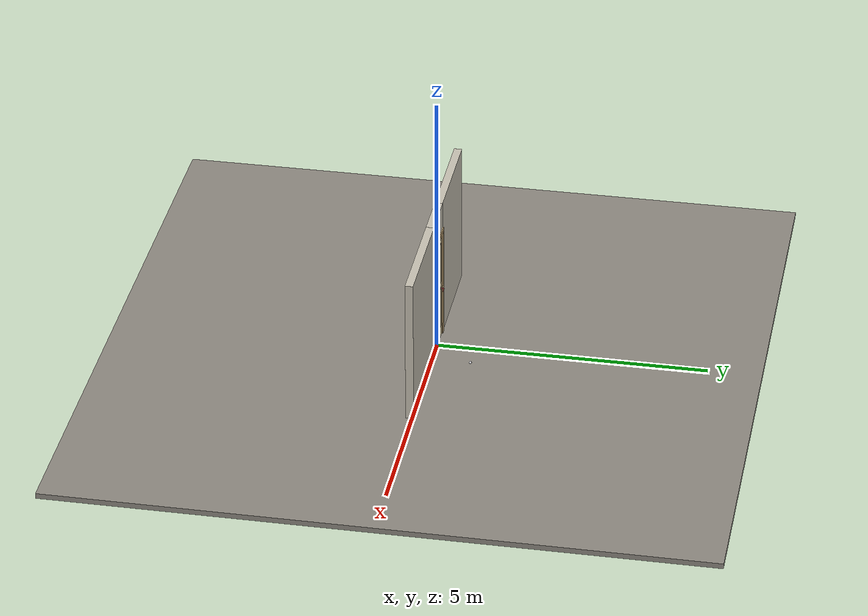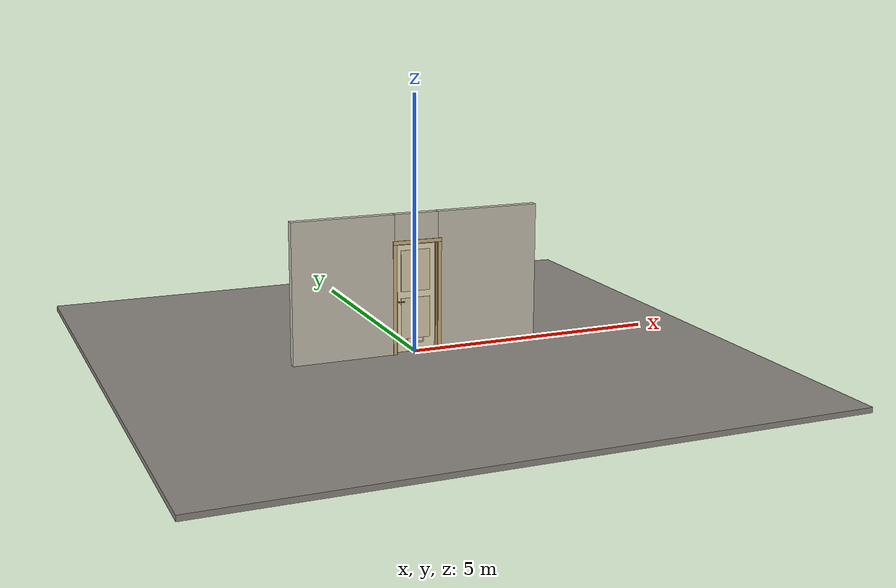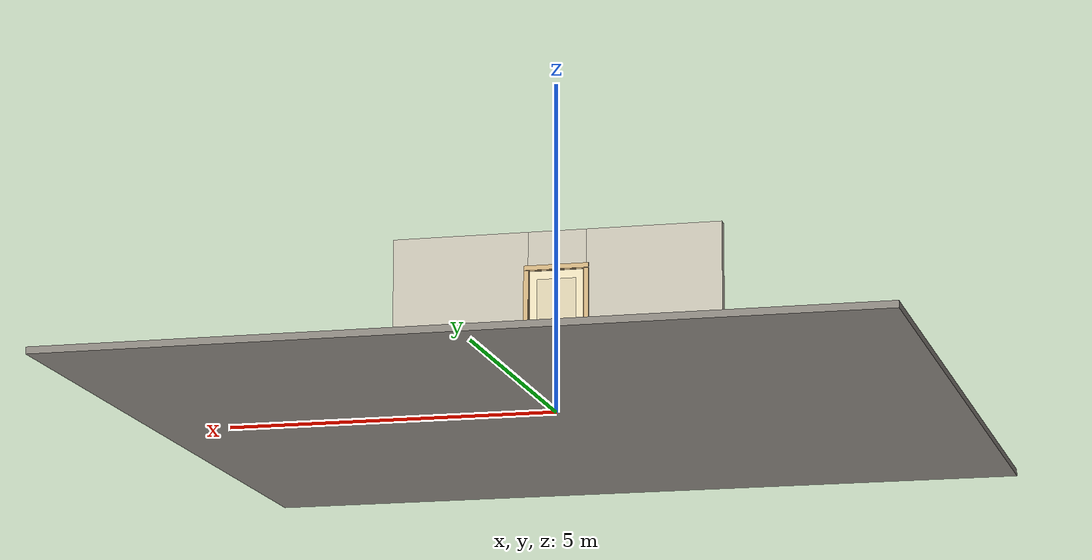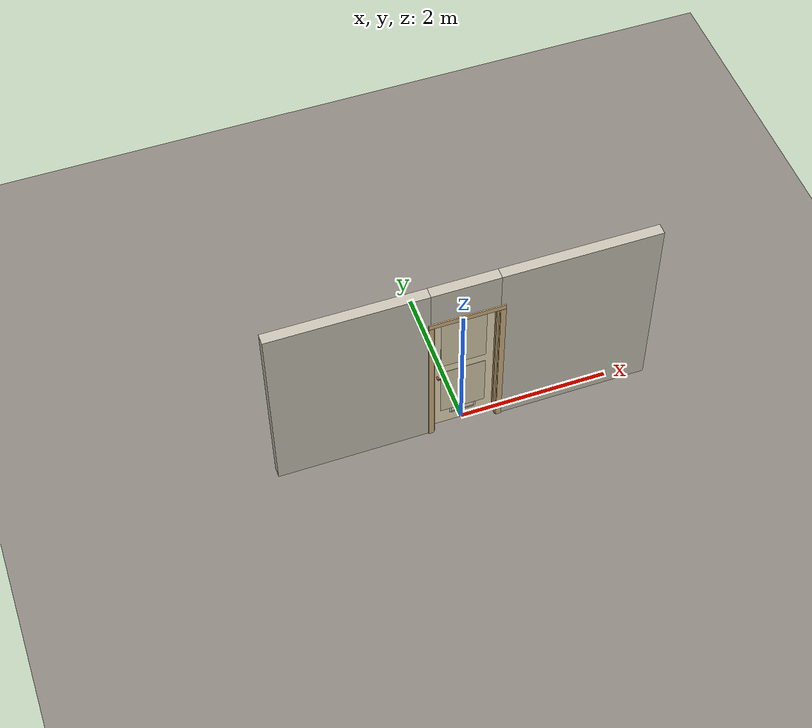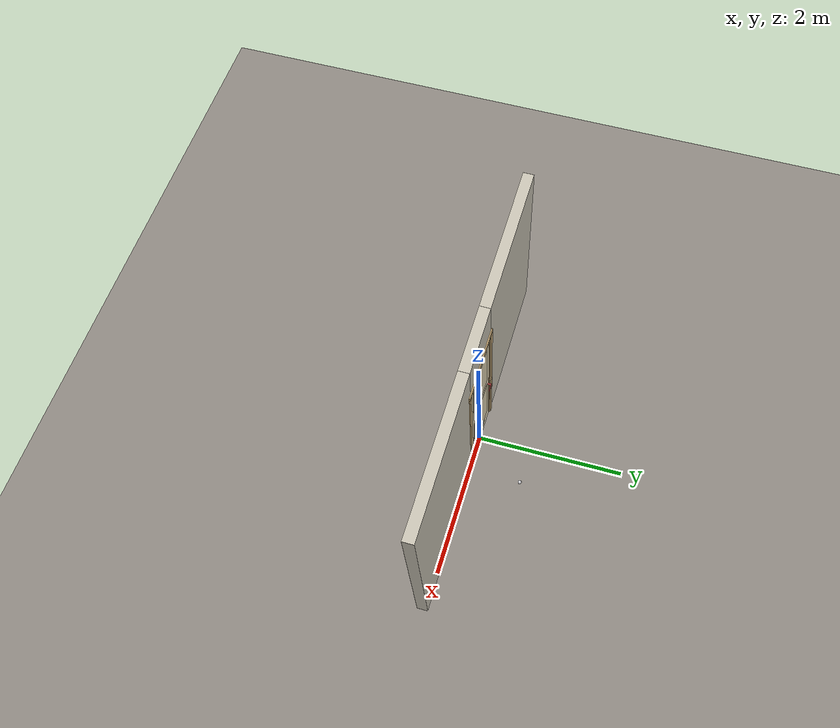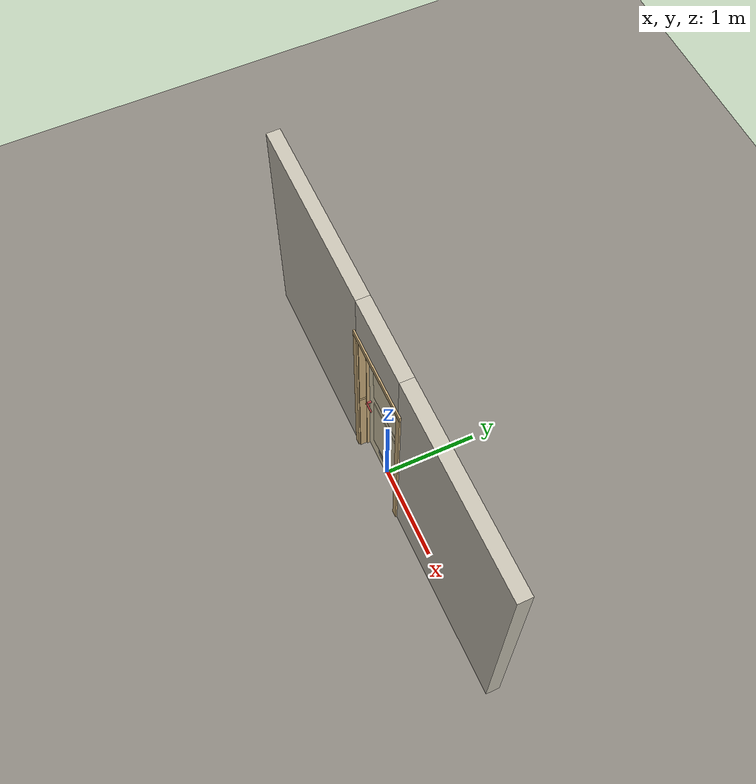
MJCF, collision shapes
<?xml version="1.0" ?>
<mujoco model="db0936_swing_single_full">
  <compiler angle="radian" meshdir="../../hardware" texturedir="../../textures" autolimits="true" inertiafromgeom="false"/>
  <option timestep="0.002" integrator="implicitfast" cone="elliptic" impratio="10" noslip_iterations="3">
    <flag multiccd="enable"/>
  </option>
  <size memory="16M"/>
  <default>
    <geom condim="4" solref="0.005 1" solimp="0.95 0.99 0.001"/>
    <joint solreflimit="0.005 1" solimplimit="0.95 0.99 0.001"/>
    <tendon solreflimit="0.005 1"/>
    <equality solref="0.002 1"/>
  </default>
  <visual>
    <headlight ambient="0.4 0.4 0.4" diffuse="0.7 0.7 0.7" specular="0.2 0.2 0.2"/>
    <quality shadowsize="4096"/>
    <map znear="0.01" zfar="60"/>
  </visual>
  <asset>
    <mesh name="hinge_96510cf394" file="hinge_96510cf394.obj"/>
    <mesh name="hinge_jamb_7fd4ca52b2" file="hinge_jamb_7fd4ca52b2.obj"/>
    <mesh name="lever_748f08efca" file="lever_748f08efca.obj"/>
    <material name="mat_floor" rgba="0.55 0.53 0.5 1" specular="0.2" shininess="0.15" reflectance="0"/>
    <material name="mat_wall" rgba="0.78 0.76 0.7 1" specular="0.2" shininess="0.1" reflectance="0"/>
    <material name="mat_leaf" rgba="0.93 0.88 0.74 1" specular="0.2" shininess="0.55" reflectance="0"/>
    <material name="mat_leaf_panel" rgba="0.856 0.81 0.681 1" specular="0.2" shininess="0.55" reflectance="0"/>
    <material name="mat_hinge" rgba="0.65 0.66 0.68 1" specular="0.74" shininess="0.5" reflectance="0.36"/>
    <material name="mat_op_chrome" rgba="0.9 0.9 0.92 1" specular="0.8" shininess="0.9" reflectance="0.4"/>
    <material name="mat_trim" rgba="0.85 0.66 0.3 1" specular="0.8" shininess="0.75" reflectance="0.4"/>
    <material name="mat_bolt" rgba="0.85 0.66 0.3 1" specular="0.8" shininess="0.75" reflectance="0.4"/>
    <material name="mat_frame" rgba="0.82 0.7 0.5 1" specular="0.2" shininess="0.45" reflectance="0"/>
    <material name="mat_vent" rgba="0.8 0.81 0.83 1" specular="0.8" shininess="0.6" reflectance="0.4"/>
    <material name="mat_stop" rgba="0.9 0.9 0.92 1" specular="0.8" shininess="0.9" reflectance="0.4"/>
    <texture name="skybox" type="skybox" builtin="gradient" rgb1="0.6 0.7 0.85" rgb2="0.9 0.92 0.95" width="256" height="256"/>
  </asset>
  <worldbody>
    <light name="sun" pos="1.5 -2.5 4" dir="-0.3 0.5 -0.8" directional="true" diffuse="0.8 0.8 0.8" specular="0.3 0.3 0.3" castshadow="true"/>
    <light name="fill" pos="-1.5 2.5 3" dir="0.3 -0.5 -0.7" directional="true" diffuse="0.35 0.35 0.4" castshadow="false"/>
    <camera name="robot_view" pos="0 -2.685812 1.812087" xyaxes="1 0 0 0 0.26963 0.962964" fovy="52"/>
    <camera name="far_view" pos="0 2.589812 1.812087" xyaxes="-1 0 0 0 -0.26963 0.962964" fovy="52"/>
    <camera name="iso" pos="-2.004737 -2.263762 2.234138" xyaxes="0.741536 -0.670913 0 0.242917 0.268487 0.932151" fovy="46"/>
    <camera name="detail_handle" pos="-0.0764 -0.8725 1.296" xyaxes="0.97561 0.219512 0 -0.070934 0.315262 0.94635" fovy="38"/>
    <geom name="floor" type="box" size="6 6 0.05" pos="0 0 -0.05" material="mat_floor" group="0" contype="1" conaffinity="1" friction="0.8 0.005 0.0001" density="2400"/>
    <geom name="wall_left" type="box" size="1.0205 0.0725 1.3735" pos="-1.4795 -0.048 1.3735" material="mat_wall" group="0" contype="1" conaffinity="1" friction="0.6 0.005 0.0001" density="800"/>
    <geom name="wall_right" type="box" size="1.0355 0.0725 1.3735" pos="1.4645 -0.048 1.3735" material="mat_wall" group="0" contype="1" conaffinity="1" friction="0.6 0.005 0.0001" density="800"/>
    <geom name="wall_header" type="box" size="0.444 0.0725 0.2755" pos="-0.015 -0.048 2.4715" material="mat_wall" group="0" contype="1" conaffinity="1" friction="0.6 0.005 0.0001" density="800"/>
    <geom name="hinge_0_jamb" type="mesh" mesh="hinge_jamb_7fd4ca52b2" pos="0.407 0.0245 0.259" quat="0 0 0 1" material="mat_hinge" group="1" contype="0" conaffinity="0" density="7850"/>
    <geom name="hinge_1_jamb" type="mesh" mesh="hinge_jamb_7fd4ca52b2" pos="0.407 0.0245 1.076" quat="0 0 0 1" material="mat_hinge" group="1" contype="0" conaffinity="0" density="7850"/>
    <geom name="hinge_2_jamb" type="mesh" mesh="hinge_jamb_7fd4ca52b2" pos="0.407 0.0245 1.963" quat="0 0 0 1" material="mat_hinge" group="1" contype="0" conaffinity="0" density="7850"/>
    <geom name="jamb_hinge" type="box" size="0.0095 0.0725 1.0735" pos="0.4195 -0.048 1.0735" material="mat_frame" group="0" contype="1" conaffinity="1" friction="0.6 0.005 0.0001" density="400"/>
    <geom name="strike_1016_wall_n" type="box" size="0.0245 0.056325 0.0167" pos="-0.4345 -0.064175 1.016" material="mat_frame" group="0" contype="1" conaffinity="1" friction="0.6 0.005 0.0001" density="400"/>
    <geom name="strike_1016_wall_p" type="box" size="0.0245 0.008 0.0167" pos="-0.4345 0.01585 1.016" material="mat_frame" group="0" contype="1" conaffinity="1" friction="0.6 0.005 0.0001" density="400"/>
    <geom name="strike_1016_ramp" type="box" size="0.0245 0.01649 0.0167" pos="-0.439136 0.028673 1.016" quat="0.977148 0 0 0.212558" material="mat_frame" group="0" contype="1" conaffinity="1" friction="0.12 0.005 0.0001" density="400"/>
    <geom name="strike_1016_back" type="box" size="0.01615 0.00785 0.0167" pos="-0.44285 0 1.016" material="mat_frame" group="0" contype="1" conaffinity="1" friction="0.6 0.005 0.0001" density="400"/>
    <geom name="jamb_strike_0" type="box" size="0.0245 0.0725 0.49965" pos="-0.4345 -0.048 0.49965" material="mat_frame" group="0" contype="1" conaffinity="1" friction="0.6 0.005 0.0001" density="400"/>
    <geom name="jamb_strike_1" type="box" size="0.0245 0.0725 0.55715" pos="-0.4345 -0.048 1.58985" material="mat_frame" group="0" contype="1" conaffinity="1" friction="0.6 0.005 0.0001" density="400"/>
    <geom name="jamb_head" type="box" size="0.444 0.0725 0.0095" pos="-0.015 -0.048 2.1565" material="mat_frame" group="0" contype="1" conaffinity="1" friction="0.6 0.005 0.0001" density="400"/>
    <geom name="head_stud" type="box" size="0.444 0.0725 0.015" pos="-0.015 -0.048 2.181" material="mat_wall" group="0" contype="1" conaffinity="1" friction="0.6 0.005 0.0001" density="500"/>
    <geom name="stop_hinge" type="box" size="0.0055 0.016 1.0735" pos="0.4045 -0.034 1.0735" material="mat_frame" group="0" contype="1" conaffinity="1" friction="0.6 0.005 0.0001" density="400"/>
    <geom name="stop_strike" type="box" size="0.0055 0.016 1.0735" pos="-0.4045 -0.034 1.0735" material="mat_frame" group="0" contype="1" conaffinity="1" friction="0.6 0.005 0.0001" density="400"/>
    <geom name="stop_head" type="box" size="0.41 0.016 0.0055" pos="0 -0.034 2.1415" material="mat_frame" group="0" contype="1" conaffinity="1" friction="0.6 0.005 0.0001" density="400"/>
    <geom name="casing_l_n" type="box" size="0.035 0.008 1.083" pos="-0.459 -0.1285 1.0735" material="mat_frame" group="2" contype="0" conaffinity="0" density="400"/>
    <geom name="casing_r_n" type="box" size="0.035 0.008 1.083" pos="0.459 -0.1285 1.0735" material="mat_frame" group="2" contype="0" conaffinity="0" density="400"/>
    <geom name="casing_h_n" type="box" size="0.494 0.008 0.035" pos="0 -0.1285 2.196" material="mat_frame" group="2" contype="0" conaffinity="0" density="400"/>
    <geom name="casing_l_p" type="box" size="0.035 0.008 1.083" pos="-0.459 0.0325 1.0735" material="mat_frame" group="2" contype="0" conaffinity="0" density="400"/>
    <geom name="casing_r_p" type="box" size="0.035 0.008 1.083" pos="0.459 0.0325 1.0735" material="mat_frame" group="2" contype="0" conaffinity="0" density="400"/>
    <geom name="casing_h_p" type="box" size="0.494 0.008 0.035" pos="0 0.0325 2.196" material="mat_frame" group="2" contype="0" conaffinity="0" density="400"/>
    <geom name="floor_stop_dome" type="sphere" size="0.025" pos="0.487153 0.711177 0" material="mat_stop" group="0" contype="1" conaffinity="1" friction="0.6 0.005 0.0001" density="7000"/>
    <site name="approach_point" pos="0 -1.5 0" quat="1 0 0 0" size="0.05" rgba="0.2 0.9 0.2 0.5" group="4"/>
    <site name="goal_point" pos="0 1.5 0" quat="1 0 0 0" size="0.05" rgba="0.2 0.9 0.2 0.5" group="4"/>
    <site name="door_plane_center" pos="0 0 1.0735" quat="1 0 0 0" size="0.02" rgba="0.2 0.9 0.2 0.5" group="4"/>
    <body name="leaf" pos="0.41 0 0">
      <inertial pos="-0.399339 0.000378 1.027127" mass="15.886849" quat="0.501227 -0.499899 -0.500134 -0.498737" diaginertia="0.878067042 6.247471132 7.121818683"/>
      <joint name="leaf_hinge" type="hinge" axis="0 0 -1" pos="-0.003 0.0245 0" limited="true" range="0 1.658063" damping="0.218374" frictionloss="3.391442" armature="0.02"/>
      <geom name="leaf_slab" type="box" size="0.4065 0.0175 1.067" pos="-0.4095 0 1.076" material="mat_leaf" group="0" contype="1" conaffinity="1" friction="0.35 0.005 0.0001" density="1"/>
      <geom name="leaf_panel_0_n" type="box" size="0.2965 0.003 0.40564" pos="-0.4095 -0.0205 0.66938" material="mat_leaf_panel" group="1" contype="0" conaffinity="0" density="1"/>
      <geom name="leaf_panel_0_p" type="box" size="0.2965 0.003 0.40564" pos="-0.4095 0.0205 0.66938" material="mat_leaf_panel" group="1" contype="0" conaffinity="0" density="1"/>
      <geom name="leaf_panel_1_n" type="box" size="0.2965 0.003 0.40564" pos="-0.4095 -0.0205 1.61066" material="mat_leaf_panel" group="1" contype="0" conaffinity="0" density="1"/>
      <geom name="leaf_panel_1_p" type="box" size="0.2965 0.003 0.40564" pos="-0.4095 0.0205 1.61066" material="mat_leaf_panel" group="1" contype="0" conaffinity="0" density="1"/>
      <geom name="hinge_0" type="mesh" mesh="hinge_96510cf394" pos="-0.003 0.0245 0.259" quat="0 0 0 1" material="mat_hinge" group="1" contype="0" conaffinity="0" density="7850"/>
      <geom name="hinge_1" type="mesh" mesh="hinge_96510cf394" pos="-0.003 0.0245 1.076" quat="0 0 0 1" material="mat_hinge" group="1" contype="0" conaffinity="0" density="7850"/>
      <geom name="hinge_2" type="mesh" mesh="hinge_96510cf394" pos="-0.003 0.0245 1.963" quat="0 0 0 1" material="mat_hinge" group="1" contype="0" conaffinity="0" density="7850"/>
      <geom name="leaf_latch_bolt_faceplate" type="box" size="0.0006 0.01235 0.0267" pos="-0.8154 0 1.016" material="mat_bolt" group="1" contype="0" conaffinity="0" density="8500"/>
      <geom name="louver_vent_stile_n_l" type="box" size="0.012 0.002 0.137" pos="-0.5715 -0.0195 0.314" material="mat_vent" group="2" contype="0" conaffinity="0" density="2700"/>
      <geom name="louver_vent_stile_n_r" type="box" size="0.012 0.002 0.137" pos="-0.2475 -0.0195 0.314" material="mat_vent" group="2" contype="0" conaffinity="0" density="2700"/>
      <geom name="louver_vent_rail_n_b" type="box" size="0.15 0.002 0.012" pos="-0.4095 -0.0195 0.177" material="mat_vent" group="2" contype="0" conaffinity="0" density="2700"/>
      <geom name="louver_vent_rail_n_t" type="box" size="0.15 0.002 0.012" pos="-0.4095 -0.0195 0.451" material="mat_vent" group="2" contype="0" conaffinity="0" density="2700"/>
      <geom name="louver_vent_stile_p_l" type="box" size="0.012 0.002 0.137" pos="-0.5715 0.0195 0.314" material="mat_vent" group="2" contype="0" conaffinity="0" density="2700"/>
      <geom name="louver_vent_stile_p_r" type="box" size="0.012 0.002 0.137" pos="-0.2475 0.0195 0.314" material="mat_vent" group="2" contype="0" conaffinity="0" density="2700"/>
      <geom name="louver_vent_rail_p_b" type="box" size="0.15 0.002 0.012" pos="-0.4095 0.0195 0.177" material="mat_vent" group="2" contype="0" conaffinity="0" density="2700"/>
      <geom name="louver_vent_rail_p_t" type="box" size="0.15 0.002 0.012" pos="-0.4095 0.0195 0.451" material="mat_vent" group="2" contype="0" conaffinity="0" density="2700"/>
      <geom name="louver_vent_slat_0" type="box" size="0.15 0.0015 0.015" pos="-0.4095 0 0.209833" quat="0.965926 -0.258819 0 0" material="mat_vent" group="2" contype="0" conaffinity="0" density="2700"/>
      <geom name="louver_vent_slat_1" type="box" size="0.15 0.0015 0.015" pos="-0.4095 0 0.2515" quat="0.965926 -0.258819 0 0" material="mat_vent" group="2" contype="0" conaffinity="0" density="2700"/>
      <geom name="louver_vent_slat_2" type="box" size="0.15 0.0015 0.015" pos="-0.4095 0 0.293167" quat="0.965926 -0.258819 0 0" material="mat_vent" group="2" contype="0" conaffinity="0" density="2700"/>
      <geom name="louver_vent_slat_3" type="box" size="0.15 0.0015 0.015" pos="-0.4095 0 0.334833" quat="0.965926 -0.258819 0 0" material="mat_vent" group="2" contype="0" conaffinity="0" density="2700"/>
      <geom name="louver_vent_slat_4" type="box" size="0.15 0.0015 0.015" pos="-0.4095 0 0.3765" quat="0.965926 -0.258819 0 0" material="mat_vent" group="2" contype="0" conaffinity="0" density="2700"/>
      <geom name="louver_vent_slat_5" type="box" size="0.15 0.0015 0.015" pos="-0.4095 0 0.418167" quat="0.965926 -0.258819 0 0" material="mat_vent" group="2" contype="0" conaffinity="0" density="2700"/>
      <site name="leaf_edge_mid" pos="-0.816 0 1.067" quat="1 0 0 0" size="0.02" rgba="0.2 0.9 0.2 0.5" group="4"/>
      <body name="leaf_handle" pos="-0.756 0 1.016">
        <inertial pos="0.024186 -0.000772 0" mass="0.847837" quat="0.70377 0 0 -0.710427" diaginertia="0.001187205 0.002868554 0.003918928"/>
        <joint name="leaf_handle_hinge" type="hinge" axis="0 1 0" limited="true" range="0 0.87" damping="0.205085" frictionloss="0.04" stiffness="0.9" springref="-0.444444" armature="0.01"/>
        <geom name="leaf_handle_spindle" type="cylinder" size="0.006 0.0255" pos="0 0 0" quat="0.707107 -0.707107 0 0" material="mat_op_chrome" group="1" contype="0" conaffinity="0" density="7850"/>
        <geom name="leaf_handle_lever_n" type="mesh" mesh="lever_748f08efca" pos="0 -0.0175 0" quat="0 0 -0.707107 0.707107" material="mat_op_chrome" group="1" contype="0" conaffinity="0" density="3000"/>
        <geom name="leaf_handle_lever_col_n" type="capsule" size="0.008 0.048" pos="0.056 -0.0725 0" quat="0.707107 0 0.707107 0" material="mat_op_chrome" group="3" contype="1" conaffinity="1" rgba="0.8 0.3 0.3 0.25" friction="0.7 0.01 0.0001" density="3000"/>
        <geom name="leaf_handle_hub_col_n" type="cylinder" size="0.012 0.022" pos="0 -0.0475 0" quat="0.707107 -0.707107 0 0" material="mat_op_chrome" group="3" contype="1" conaffinity="1" rgba="0.8 0.3 0.3 0.25" friction="0.6 0.005 0.0001" density="3000"/>
        <geom name="leaf_handle_turn_button_n" type="cylinder" size="0.006 0.005" pos="0 -0.0815 0" quat="0.707107 -0.707107 0 0" material="mat_trim" group="1" contype="0" conaffinity="0" density="7100"/>
        <geom name="leaf_handle_lever_p" type="mesh" mesh="lever_748f08efca" pos="0 0.0175 0" quat="0 0 0.707107 0.707107" material="mat_op_chrome" group="1" contype="0" conaffinity="0" density="3000"/>
        <geom name="leaf_handle_lever_col_p" type="capsule" size="0.008 0.048" pos="0.056 0.0725 0" quat="0.707107 0 0.707107 0" material="mat_op_chrome" group="3" contype="1" conaffinity="1" rgba="0.8 0.3 0.3 0.25" friction="0.7 0.01 0.0001" density="3000"/>
        <geom name="leaf_handle_hub_col_p" type="cylinder" size="0.012 0.022" pos="0 0.0475 0" quat="0.707107 -0.707107 0 0" material="mat_op_chrome" group="3" contype="1" conaffinity="1" rgba="0.8 0.3 0.3 0.25" friction="0.6 0.005 0.0001" density="3000"/>
        <site name="leaf_handle_grip_n" pos="0.0896 -0.0725 0" quat="1 0 0 0" size="0.012" rgba="0.2 0.9 0.2 0.5" group="4"/>
        <site name="leaf_handle_grip_p" pos="0.0896 0.0725 0" quat="1 0 0 0" size="0.012" rgba="0.2 0.9 0.2 0.5" group="4"/>
      </body>
      <body name="leaf_latch_bolt" pos="-0.816 0 1.016">
        <inertial pos="0.00865 0 0" mass="0.041419" quat="0.92388 0.382683 0 0" diaginertia="0.000000798 0.000005598 0.000005598"/>
        <joint name="leaf_latch_bolt_slide" type="slide" axis="1 0 0" limited="true" range="0 0.0127" damping="2" frictionloss="0.3" stiffness="300" springref="-0.008333" armature="0.1"/>
        <geom name="leaf_latch_bolt_capsule" type="capsule" size="0.00635 0.015" pos="0.00865 0 0" quat="0.707107 0 -0.707107 0" material="mat_bolt" group="0" contype="1" conaffinity="1" friction="0.2 0.005 0.0001" density="8500"/>
      </body>
    </body>
  </worldbody>
  <tendon>
    <fixed name="leaf_latch_bolt_coupling" limited="true" range="0 10">
      <joint joint="leaf_latch_bolt_slide" coef="1"/>
      <joint joint="leaf_handle_hinge" coef="-0.016076"/>
    </fixed>
  </tendon>
  <sensor>
    <jointpos name="leaf_hinge_pos" joint="leaf_hinge"/>
    <jointvel name="leaf_hinge_vel" joint="leaf_hinge"/>
    <jointpos name="leaf_handle_hinge_pos" joint="leaf_handle_hinge"/>
    <jointvel name="leaf_handle_hinge_vel" joint="leaf_handle_hinge"/>
    <jointpos name="leaf_latch_bolt_slide_pos" joint="leaf_latch_bolt_slide"/>
    <jointvel name="leaf_latch_bolt_slide_vel" joint="leaf_latch_bolt_slide"/>
  </sensor>
</mujoco>
